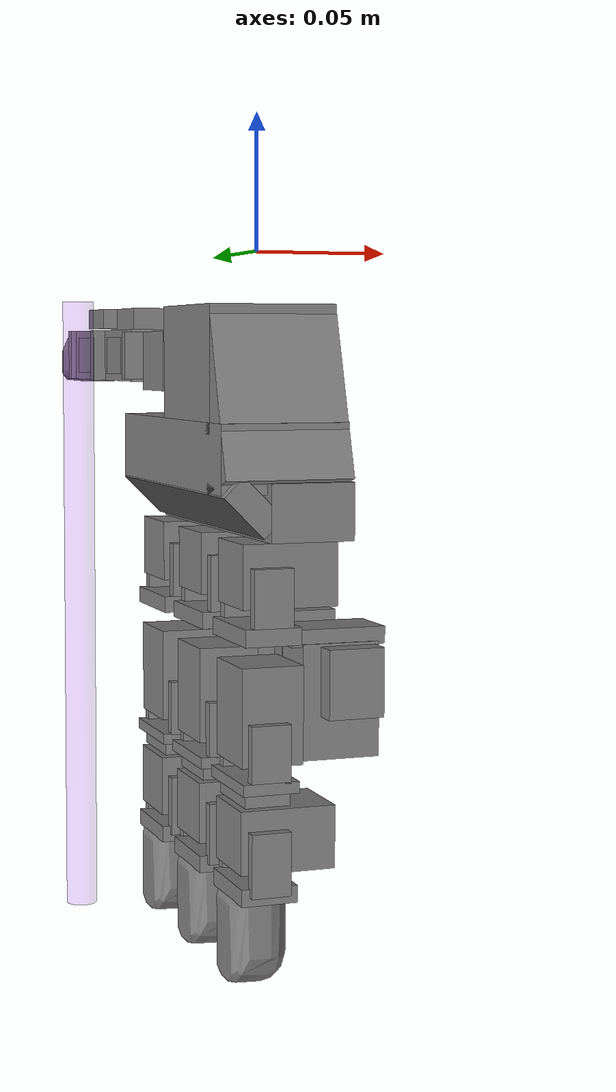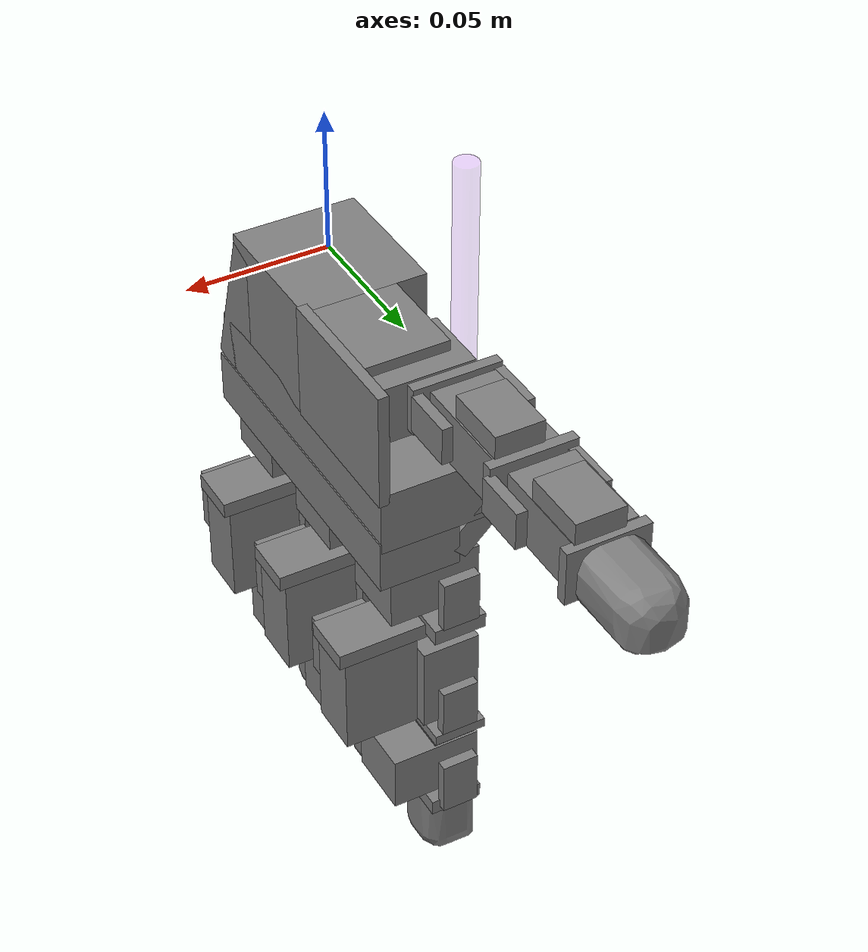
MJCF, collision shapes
<mujoco model="leap_rh">

  <!-- mesh assets -->
  <asset>
    <material name="black" rgba="0.2 0.2 0.2 1" />

    <mesh name="palm" file="meshes/leap_hand/palm_right.stl"/>
    <mesh name="base" file="meshes/leap_hand/base.stl"/>
    <mesh name="proximal" file="meshes/leap_hand/proximal.stl"/>
    <mesh name="medial" file="meshes/leap_hand/medial.stl"/>
    <mesh name="distal" file="meshes/leap_hand/distal.stl"/>
    <mesh name="tip" file="meshes/leap_hand/tip.stl"/>
    <mesh name="thumb_base" file="meshes/leap_hand/thumb_base.stl"/>
    <mesh name="thumb_proximal" file="meshes/leap_hand/thumb_proximal.stl"/>
    <mesh name="thumb_distal" file="meshes/leap_hand/thumb_distal.stl"/>
    <mesh name="thumb_tip" file="meshes/leap_hand/thumb_tip.stl"/>
  </asset>

  <!-- defaults -->
  <default>
    <!-- constraint stiffness -->

   <geom solimp="0.9 0.95 0.001" solref="0.005 1" friction="0.8"/>

    <!-- actuator defaults -->
    <position kp="3.0" />
    <joint damping="1.0" frictionloss="0.1"/>

    <!-- geom class defaults -->
    <default class="visual">
      <geom group="1" type="mesh" contype="0" conaffinity="0" density="0" material="black" />
    </default>
    <default class="tip">
      <geom type="mesh" mesh="tip" friction="0.5"/>
    </default>
    <default class="thumb_tip">
      <geom type="mesh" mesh="thumb_tip" friction="0.5"/>
    </default>

    <!-- joint class defaults -->
    <default class="mcp">
      <joint pos="0 0 0" axis="0 0 -1"
        limited="true" range="-0.314 2.23" damping="0.1"/>
      <position ctrlrange="-0.314 2.23" />
    </default>
    <default class="rot">
      <joint pos="0 0 0" axis="0 0 -1"
        limited="true" range="-1.047 1.047" damping="0.1"/>
      <position ctrlrange="-1.047 1.047" />
    </default>
    <default class="pip">
      <joint pos="0 0 0" axis="0 0 -1"
        limited="true" range="-0.506 1.885" damping="0.1"/>
      <position ctrlrange="-0.506 1.885" />
    </default>
    <default class="dip">
      <joint pos="0 0 0" axis="0 0 -1"
        limited="true" range="-0.366 2.042" damping="0.1"/>
      <position ctrlrange="-0.366 2.042" />
    </default>
    <default class="thumb_cmc">
      <joint pos="0 0 0" axis="0 0 -1"
        limited="true" range="-0.349 2.094" damping="0.1"/>
      <position ctrlrange="-0.349 2.094" />
    </default>
    <default class="thumb_axl">
      <joint pos="0 0 0" axis="0 0 -1"
        limited="true" range="-0.349 2.094" damping="0.1"/>
      <position ctrlrange="-0.349 2.094" />
    </default>
    <default class="thumb_mcp">
      <joint pos="0 0 0" axis="0 0 -1"
        limited="true" range="-0.47 2.443" damping="0.1"/>
      <position ctrlrange="-0.47 2.443" />
    </default>
    <default class="thumb_ipl">
      <joint pos="0 0 0" axis="0 0 -1"
        limited="true" range="-1.34 1.88" damping="0.1"/>
      <position ctrlrange="-1.34 1.88" />
    </default>
  </default>

  <!-- collision filtering -->
  <contact>
    <!-- filter the palm from all other finger bodies except the tips -->
    <exclude body1="palm" body2="if_bs" />
    <exclude body1="palm" body2="mf_bs" />
    <exclude body1="palm" body2="rf_bs" />
    <exclude body1="palm" body2="th_mp" />

    <exclude body1="palm" body2="if_px" />
    <exclude body1="palm" body2="mf_px" />
    <exclude body1="palm" body2="rf_px" />
    <exclude body1="palm" body2="th_bs" />

    <exclude body1="palm" body2="if_md" />
    <exclude body1="palm" body2="mf_md" />
    <exclude body1="palm" body2="rf_md" />
    <exclude body1="palm" body2="th_px" />

    <!-- none of the base fingertip geoms can touch each other -->
    <exclude body1="if_bs" body2="mf_bs" />
    <exclude body1="if_bs" body2="rf_bs" />
    <exclude body1="mf_bs" body2="rf_bs" />

    <exclude body1="th_mp" body2="if_bs" />
    <exclude body1="th_mp" body2="mf_bs" />
    <exclude body1="th_mp" body2="rf_bs" />
  </contact>

  <!-- actuators -->
  <actuator>
    <!-- index -->
    <position name="if_mcp_act" joint="if_mcp" class="mcp" />
    <position name="if_rot_act" joint="if_rot" class="rot" />
    <position name="if_pip_act" joint="if_pip" class="pip" />
    <position name="if_dip_act" joint="if_dip" class="dip" />

    <!-- middle -->
    <position name="mf_mcp_act" joint="mf_mcp" class="mcp" />
    <position name="mf_rot_act" joint="mf_rot" class="rot" />
    <position name="mf_pip_act" joint="mf_pip" class="pip" />
    <position name="mf_dip_act" joint="mf_dip" class="dip" />

    <!-- ring -->
    <position name="rf_mcp_act" joint="rf_mcp" class="mcp" />
    <position name="rf_rot_act" joint="rf_rot" class="rot" />
    <position name="rf_pip_act" joint="rf_pip" class="pip" />
    <position name="rf_dip_act" joint="rf_dip" class="dip" />

    <!-- thumb -->
    <position name="th_cmc_act" joint="th_cmc" class="thumb_cmc" />
    <position name="th_axl_act" joint="th_axl" class="thumb_axl" />
    <position name="th_mcp_act" joint="th_mcp" class="thumb_mcp" />
    <position name="th_ipl_act" joint="th_ipl" class="thumb_ipl" />
  </actuator>

  <!-- sensors -->
  <sensor>
    <force name="force_ee" site="ft_frame"/>
    <torque name="torque_ee" site="ft_frame"/>
    <!-- index -->
    <jointpos name="if_mcp_sensor" joint="if_mcp" />
    <jointpos name="if_rot_sensor" joint="if_rot" />
    <jointpos name="if_pip_sensor" joint="if_pip" />
    <jointpos name="if_dip_sensor" joint="if_dip" />

    <!-- middle -->
    <jointpos name="mf_mcp_sensor" joint="mf_mcp" />
    <jointpos name="mf_rot_sensor" joint="mf_rot" />
    <jointpos name="mf_pip_sensor" joint="mf_pip" />
    <jointpos name="mf_dip_sensor" joint="mf_dip" />

    <!-- ring -->
    <jointpos name="rf_mcp_sensor" joint="rf_mcp" />
    <jointpos name="rf_rot_sensor" joint="rf_rot" />
    <jointpos name="rf_pip_sensor" joint="rf_pip" />
    <jointpos name="rf_dip_sensor" joint="rf_dip" />

    <!-- thumb -->
    <jointpos name="th_cmc_sensor" joint="th_cmc" />
    <jointpos name="th_axl_sensor" joint="th_axl" />
    <jointpos name="th_mcp_sensor" joint="th_mcp" />
    <jointpos name="th_ipl_sensor" joint="th_ipl" />
  </sensor>

  <worldbody>
    <body name="palm" pos="0.0 0.03 -0.12" quat="0.7071068 0 0.7071068 0">
      <!-- palm -->
      <site name="ft_frame" pos="0 -0.06 0" size="0.01 0.01 0.01" rgba="1 0 0 0" type="sphere" group="1"/>
      <site name="grip_site" pos="0 -0.08 0" size="0.01 0.01 0.01" rgba="1 0 0 0" type="sphere" group="1"/>
      <site name="grip_site_cylinder" pos="0 -0.08 -0.08" quat="0.707107 0 0.707107 0" size="0.005 .1" rgba=".627 .125 .941 .2" type="cylinder" group="1"/>
      <inertial pos="-0.049542 -0.042914 -0.010227" quat="0.565586 0.427629 -0.574956 0.408254" mass="0.237" diaginertia="0.000407345 0.000304759 0.000180736"/>
      <geom name="palm_visual" pos="-0.02 0.02575 -0.0347" quat="1 0 0 0" class="visual" mesh="palm"/>
      <geom name="palm_collision_1" size="0.011 0.013 0.017" pos="-0.009 0.008 -0.011" type="box"/>
      <geom name="palm_collision_2" size="0.011 0.013 0.017" pos="-0.009 -0.037 -0.011" type="box"/>
      <geom name="palm_collision_3" size="0.011 0.013 0.017" pos="-0.009 -0.082 -0.011" type="box"/>
      <geom name="palm_collision_4" size="0.029 0.01 0.023" pos="-0.066 -0.078 -0.0115" quat="0.989016 0 0 -0.147806" type="box"/>
      <geom name="palm_collision_5" size="0.01 0.06 0.015" pos="-0.03 -0.035 -0.003" type="box"/>
      <geom name="palm_collision_6" size="0.005 0.06 0.01" pos="-0.032 -0.035 -0.024" quat="0.923956 0 0.382499 0" type="box"/>
      <geom name="palm_collision_7" size="0.012 0.058 0.023" pos="-0.048 -0.033 -0.0115" type="box"/>
      <geom name="palm_collision_8" size="0.022 0.026 0.023" pos="-0.078 -0.053 -0.0115" type="box"/>
      <geom name="palm_collision_9" size="0.002 0.018 0.017" pos="-0.098 -0.009 -0.006" type="box"/>
      <geom name="palm_collision_10" size="0.022 0.028 0.002" pos="-0.078 -0.003 0.01" type="box"/>

      <!-- index -->
      <body name="if_bs" pos="-0.007 0.023 -0.0187" quat="0.500003 0.5 0.5 -0.499997">
        <inertial pos="-0.022516 0.033882 0.016359" quat="0.388092 0.677951 -0.247713 0.573067" mass="0.044" diaginertia="1.74972e-05 1.61504e-05 7.21342e-06"/>
        <joint name="if_mcp" class="mcp"/>
        <geom name="if_bs_visual" pos="0.0084 0.0077 0.01465" quat="1 0 0 0" class="visual" mesh="base"/>
        <geom name="if_bs_collision_1" size="0.01 0.003 0.017" pos="0 0.018 0.0147" type="box"/>
        <geom name="if_bs_collision_2" size="0.014 0.02 0.01" pos="-0.027 0.042 0.015" type="box"/>
        <geom name="if_bs_collision_3" size="0.017 0.003 0.01" pos="-0.0262 0.02 0.0146" type="box"/>
        <geom name="if_bs_collision_4" size="0.01 0.012 0.004" pos="-0.0295 0.035 0.029" type="box"/>
        <geom name="if_bs_collision_5" size="0.007 0.01 0.002" pos="0 0.005 0.03" type="box"/>
        <geom name="if_bs_collision_6" size="0.007 0.01 0.002" pos="0 0.005 -0.001" type="box"/>

        <body name="if_px" pos="-0.0122 0.0381 0.0145" quat="0.500003 -0.5 -0.499997 0.5">
          <inertial pos="0.0075 -0.0002 -0.011" quat="0 0.707107 0 0.707107" mass="0.032" diaginertia="4.8853e-06 4.3733e-06 3.0933e-06"/>
          <joint name="if_rot" class="rot"/>
          <geom name="if_px_visual" pos="0.0096 0.0002 0.0007" quat="0.500003 -0.5 -0.5 -0.499997" class="visual" mesh="proximal"/>
          <geom name="if_px_collision" size="0.017 0.013 0.011" pos="0.0075 -0.0002 -0.011" type="box"/>

          <body name="if_md" pos="0.015 0.0143 -0.013" quat="0.500003 0.5 -0.5 0.499997">
            <inertial pos="0.0054215 -0.029148 0.015" quat="0.687228 0.687228 0.166487 0.166487" mass="0.037" diaginertia="8.28004e-06 8.1598e-06 5.39516e-06"/>
            <joint name="if_pip" class="pip"/>
            <geom name="if_md_visual" pos="0.0211 -0.0084 0.0097" quat="2.67949e-08 -1 0 0" class="visual" mesh="medial"/>
            <geom name="if_md_collision_1" size="0.008 0.003 0.013" pos="0 -0.02 0.015" type="box"/>
            <geom name="if_md_collision_2" size="0.01 0.002 0.017" pos="0 -0.016 0.015" type="box"/>
            <geom name="if_md_collision_3" size="0.007 0.01 0.002" pos="0 -0.0045 0.03" type="box"/>
            <geom name="if_md_collision_4" size="0.007 0.01 0.002" pos="0 -0.0045 0" type="box"/>
            <geom name="if_md_collision_5" size="0.017 0.011 0.013" pos="0.0075 -0.035 0.015" type="box"/>

            <body name="if_ds" pos="0 -0.0361 0.0002">
              <inertial pos="-0.0008794 -0.027019 0.014594" quat="0.702905 0.710643 -0.0212937 -0.0214203" mass="0.016" diaginertia="3.71863e-06 3.02396e-06 1.6518e-06"/>
              <joint name="if_dip" class="dip"/>
              <geom name="if_ds_visual" pos="0.0132 -0.0061 0.0144" quat="2.67949e-08 1 0 0" class="visual" mesh="distal"/>
              <geom name="if_ds_collision_1" size="0.01 0.003 0.015" pos="0 -0.017 0.015" type="box"/>
              <geom name="if_ds_collision_2" size="0.007 0.011 0.002" pos="0 -0.006 0.03" type="box"/>
              <geom name="if_ds_collision_3" size="0.007 0.011 0.002" pos="0 -0.006 -0.001" type="box"/>

              <geom name="if_tip" class="tip"/>
            </body>

          </body>
        </body>
      </body>  <!-- index -->

      <!-- middle -->
      <body name="mf_bs" pos="-0.0071 -0.0224 -0.0187" quat="0.500003 0.5 0.5 -0.499997">
        <inertial pos="-0.022516 0.033882 0.016359" quat="0.388092 0.677951 -0.247713 0.573067" mass="0.044" diaginertia="1.74972e-05 1.61504e-05 7.21342e-06"/>
        <joint name="mf_mcp" class="mcp"/>
        <geom name="mf_bs_visual" pos="0.0084 0.0077 0.01465" quat="1 0 0 0" class="visual" mesh="base"/>
        <geom name="mf_bs_collision_1" size="0.01 0.003 0.017" pos="0 0.018 0.0147" type="box"/>
        <geom name="mf_bs_collision_2" size="0.014 0.02 0.01" pos="-0.027 0.042 0.015" type="box"/>
        <geom name="mf_bs_collision_3" size="0.017 0.003 0.01" pos="-0.0262 0.02 0.0146" type="box"/>
        <geom name="mf_bs_collision_4" size="0.01 0.012 0.004" pos="-0.0295 0.035 0.029" type="box"/>
        <geom name="mf_bs_collision_5" size="0.007 0.01 0.002" pos="0 0.005 0.03" type="box"/>
        <geom name="mf_bs_collision_6" size="0.007 0.01 0.002" pos="0 0.005 -0.001" type="box"/>

        <body name="mf_px" pos="-0.0122 0.0381 0.0145" quat="0.500003 -0.5 -0.499997 0.5">
          <inertial pos="0.0075 -0.0002 -0.011" quat="0 0.707107 0 0.707107" mass="0.032" diaginertia="4.8853e-06 4.3733e-06 3.0933e-06"/>
          <joint name="mf_rot" class="rot"/>
          <geom name="mf_px_visual" pos="0.0096 0.0003 0.0007" quat="0.500003 -0.5 -0.5 -0.499997" class="visual" mesh="proximal"/>
          <geom name="mf_px_collision" size="0.017 0.013 0.011" pos="0.0075 -0.0002 -0.011" type="box"/>

          <body name="mf_md" pos="0.015 0.0143 -0.013" quat="0.500003 0.5 -0.5 0.499997">
            <inertial pos="0.0054215 -0.029148 0.015" quat="0.687228 0.687228 0.166487 0.166487" mass="0.037" diaginertia="8.28004e-06 8.1598e-06 5.39516e-06"/>
            <joint name="mf_pip" class="pip"/>
            <geom name="mf_md_visual" pos="0.0211 -0.0084 0.0097" quat="1.32679e-06 -1 0 0" class="visual" mesh="medial"/>
            <geom name="mf_md_collision_1" size="0.008 0.003 0.013" pos="0 -0.02 0.015" type="box"/>
            <geom name="mf_md_collision_2" size="0.01 0.002 0.017" pos="0 -0.016 0.015" type="box"/>
            <geom name="mf_md_collision_3" size="0.007 0.01 0.002" pos="0 -0.0045 0.03" type="box"/>
            <geom name="mf_md_collision_4" size="0.007 0.01 0.002" pos="0 -0.0045 0" type="box"/>
            <geom name="mf_md_collision_5" size="0.017 0.011 0.013" pos="0.0075 -0.035 0.015" type="box"/>

            <body name="mf_ds" pos="0 -0.0361 0.0002">
              <inertial pos="-0.0008794 -0.027019 0.014594" quat="0.702905 0.710643 -0.0212937 -0.0214203" mass="0.016" diaginertia="3.71863e-06 3.02396e-06 1.6518e-06"/>
              <joint name="mf_dip" class="dip"/>
              <geom name="mf_ds_visual" pos="0.0132 -0.0061 0.0145" quat="1.32679e-06 1 0 0" class="visual" mesh="distal"/>
              <geom name="mf_ds_collision_1" size="0.01 0.003 0.015" pos="0 -0.017 0.015" type="box"/>
              <geom name="mf_ds_collision_2" size="0.007 0.011 0.002" pos="0 -0.006 0.03" type="box"/>
              <geom name="mf_ds_collision_3" size="0.007 0.011 0.002" pos="0 -0.006 -0.001" type="box"/>

              <geom name="mf_tip" class="tip"/>
            </body>

          </body>
        </body>
      </body>  <!-- middle -->

      <!-- ring -->
      <body name="rf_bs" pos="-0.00709 -0.0678 -0.0187" quat="0.500003 0.5 0.5 -0.499997">
        <inertial pos="-0.022516 0.033882 0.016359" quat="0.388092 0.677951 -0.247713 0.573067" mass="0.044" diaginertia="1.74972e-05 1.61504e-05 7.21342e-06"/>
        <joint name="rf_mcp" class="mcp"/>
        <geom name="rf_bs_visual" pos="0.0084 0.0077 0.01465" quat="1 0 0 0" class="visual" mesh="base"/>
        <geom name="rf_bs_collision_1" size="0.01 0.003 0.017" pos="0 0.018 0.0147" type="box"/>
        <geom name="rf_bs_collision_2" size="0.014 0.02 0.01" pos="-0.027 0.042 0.015" type="box"/>
        <geom name="rf_bs_collision_3" size="0.017 0.003 0.01" pos="-0.0262 0.02 0.0146" type="box"/>
        <geom name="rf_bs_collision_4" size="0.01 0.012 0.004" pos="-0.0295 0.035 0.029" type="box"/>
        <geom name="rf_bs_collision_5" size="0.007 0.01 0.002" pos="0 0.005 0.03" type="box"/>
        <geom name="rf_bs_collision_6" size="0.007 0.01 0.002" pos="0 0.005 -0.001" type="box"/>

        <body name="rf_px" pos="-0.0122 0.0381 0.0145" quat="0.500003 -0.5 -0.499997 0.5">
          <inertial pos="0.0075 -0.0002 -0.011" quat="0 0.707107 0 0.707107" mass="0.032" diaginertia="4.8853e-06 4.3733e-06 3.0933e-06"/>
          <joint name="rf_rot" class="rot"/>
          <geom name="rf_px_visual" pos="0.0096 0.0003 0.0007" quat="0.500003 -0.5 -0.5 -0.499997" class="visual" mesh="proximal"/>
          <geom name="rf_px_collision" size="0.017 0.013 0.011" pos="0.0075 -0.0002 -0.011" type="box"/>

          <body name="rf_md" pos="0.015 0.0143 -0.013" quat="0.500003 0.5 -0.5 0.499997">
            <inertial pos="0.0054215 -0.029148 0.015" quat="0.687228 0.687228 0.166487 0.166487" mass="0.037" diaginertia="8.28004e-06 8.1598e-06 5.39516e-06"/>
            <joint name="rf_pip" class="pip"/>
            <geom name="rf_md_visual" pos="0.0211 -0.0084 0.0097" quat="1.32679e-06 -1 0 0" class="visual" mesh="medial"/>
            <geom name="rf_md_collision_1" size="0.008 0.003 0.013" pos="0 -0.02 0.015" type="box"/>
            <geom name="rf_md_collision_2" size="0.01 0.002 0.017" pos="0 -0.016 0.015" type="box"/>
            <geom name="rf_md_collision_3" size="0.007 0.01 0.002" pos="0 -0.0045 0.03" type="box"/>
            <geom name="rf_md_collision_4" size="0.007 0.01 0.002" pos="0 -0.0045 0" type="box"/>
            <geom name="rf_md_collision_5" size="0.017 0.011 0.013" pos="0.0075 -0.035 0.015" type="box"/>

            <body name="rf_ds" pos="0 -0.03609 0.0002">
              <inertial pos="-0.0008794 -0.027019 0.014594" quat="0.702905 0.710643 -0.0212937 -0.0214203" mass="0.016" diaginertia="3.71863e-06 3.02396e-06 1.6518e-06"/>
              <joint name="rf_dip" class="dip"/>
              <geom name="rf_ds_visual" pos="0.0132 -0.0061 0.0145" quat="1.32679e-06 1 0 0" class="visual" mesh="distal"/>
              <geom name="rf_ds_collision_1" size="0.01 0.003 0.015" pos="0 -0.017 0.015" type="box"/>
              <geom name="rf_ds_collision_2" size="0.007 0.011 0.002" pos="0 -0.006 0.03" type="box"/>
              <geom name="rf_ds_collision_3" size="0.007 0.011 0.002" pos="0 -0.006 -0.001" type="box"/>

              <geom name="rf_tip" class="tip"/>
            </body>

          </body>
        </body>
      </body>  <!-- ring -->

      <!-- thumb -->
      <body name="th_mp" pos="-0.0693 -0.0012 -0.0216" quat="0.707109 0 0.707105 0">
        <inertial pos="0.0075 -0.0002 -0.011" quat="0 0.707107 0 0.707107" mass="0.032" diaginertia="4.8853e-06 4.3733e-06 3.0933e-06"/>
        <joint name="th_cmc" class="thumb_cmc"/>
        <geom name="th_mp_visual" pos="-0.0053 0.0003 0.00078" quat="0.500003 -0.5 -0.5 -0.499997" class="visual" mesh="proximal"/>
        <geom name="th_mp_collision" size="0.017 0.013 0.011" pos="-0.0075 -0.0002 -0.011" type="box"/>

        <body name="th_bs" pos="0 0.0143 -0.013" quat="0.500003 0.5 -0.5 0.499997">
          <inertial pos="0 0 -0.0070806" quat="0.707107 0.707107 0 0" mass="0.003" diaginertia="6.1932e-07 5.351e-07 2.1516e-07"/>
          <joint name="th_axl" class="thumb_axl"/>
          <geom name="th_bs_visual" pos="0.01196 0 -0.0158" quat="0.707109 0.707105 0 0" class="visual" mesh="thumb_base"/>
          <geom name="th_bs_collision_1" size="0.009 0.0165 0.002" pos="0 0 -0.0015" type="box"/>
          <geom name="th_bs_collision_2" size="0.007 0.002 0.01" pos="0 -0.015 -0.013" type="box"/>
          <geom name="th_bs_collision_3" size="0.007 0.002 0.01" pos="0 0.015 -0.013" type="box"/>

          <body name="th_px" pos="0 0.0145 -0.017" quat="0.707109 -0.707105 0 0">
            <inertial pos="-0.0020593 0.015912 -0.013733" quat="0.698518 0.697382 -0.104933 0.121324" mass="0.038" diaginertia="9.87104e-06 9.32653e-06 4.36203e-06"/>
            <joint name="th_mcp" class="thumb_mcp"/>
            <geom name="th_px_visual" pos="0.0439 0.0579 -0.0086" quat="1 0 0 0" class="visual" mesh="thumb_proximal"/>
            <geom name="th_px_collision_1" size="0.01 0.02 0.012" pos="0 0.0105 -0.014" type="box"/>
            <geom name="th_px_collision_2" size="0.01 0.002 0.016" pos="0 0.031 -0.015" type="box"/>
            <geom name="th_px_collision_3" size="0.007 0.01 0.002" pos="0 0.042 0.001" type="box"/>
            <geom name="th_px_collision_4" size="0.007 0.01 0.002" pos="0 0.042 -0.029" type="box"/>
            <geom name="th_px_collision_5" size="0.005 0.012 0.009" pos="-0.0135 0.0175 -0.011656" type="box"/>

            <body name="th_ds" pos="0 0.0466 0.0002" quat="1.32679e-06 0 0 1">
              <inertial pos="0.00096191 -0.024203 -0.014419" quat="0.35287 0.311272 -0.632839 0.614904" mass="0.049" diaginertia="2.08591e-05 2.0402e-05 4.71335e-06"/>
              <joint name="th_ipl" class="thumb_ipl"/>
              <geom name="th_ds_visual" pos="0.0625 0.0784 0.0489" quat="1 0 0 0" class="visual" mesh="thumb_distal"/>
              <geom name="th_ds_collision_1" size="0.01 0.018 0.012" pos="0 -0.0085 -0.015" type="box"/>
              <geom name="th_ds_collision_2" size="0.01 0.002 0.015" pos="0 -0.029 -0.014" type="box"/>
              <geom name="th_ds_collision_3" size="0.004 0.012 0.009" pos="0.015 -0.0175 -0.0115" type="box"/>

              <geom name="th_tip" class="thumb_tip"/>
            </body>

          </body>
        </body>
      </body>  <!-- thumb -->

    </body>  <!-- palm -->
  </worldbody>
</mujoco>
